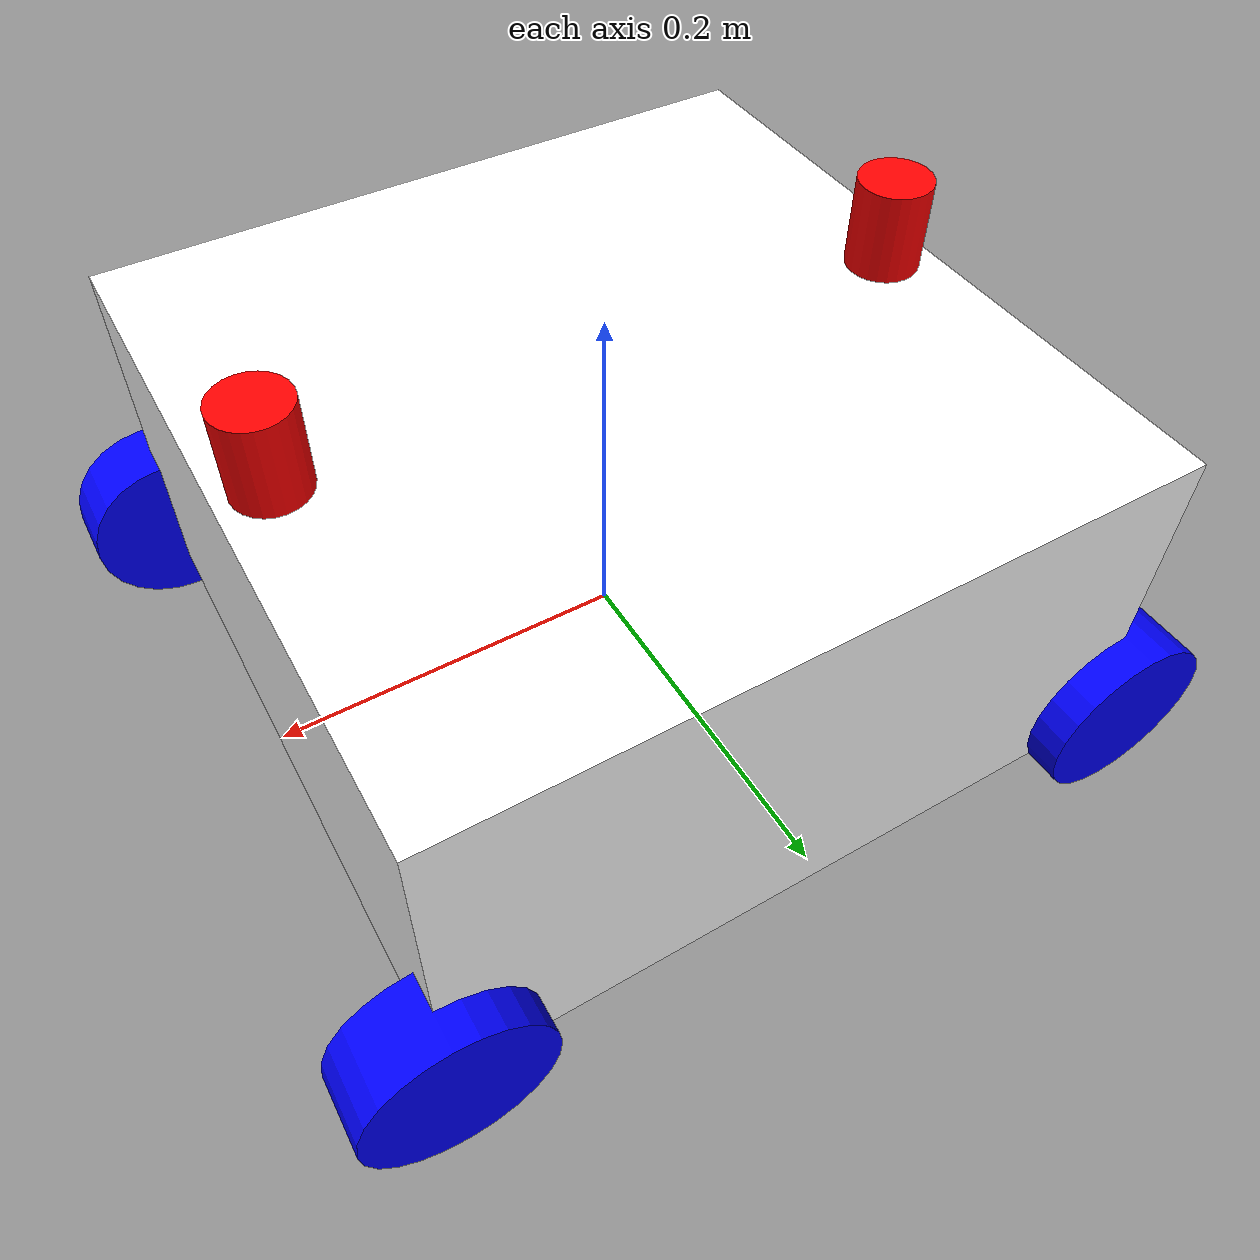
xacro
<?xml version="1.0"?>
<robot xmlns:xacro="http://www.ros.org/wiki/xacro" name="robot">

    <xacro:include filename="robot_core.xacro" />
    <xacro:include filename="lidar_front.xacro" />
    <xacro:include filename="lidar_rear.xacro" />
    <xacro:include filename="imu.xacro" />
</robot>

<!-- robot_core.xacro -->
<robot xmlns:xacro="http://www.ros.org/wiki/xacro">

<material name="white">
    <color rgba="1 1 1 1"/>
</material>

<material name="black">
    <color rgba="0 0 0 1"/>
</material>

<material name="red">
    <color rgba="1 0 0 1"/>
</material>

<material name="green">
    <color rgba="0 1 0 1"/>
</material>

<material name="blue">
    <color rgba="0 0 1 1"/>
</material>

<material name="yellow">
    <color rgba="1 1 0 1"/>
</material>

<!-- Base Link -->

<link name="base_link">

</link>

<!-- Base Footprint-->

<joint name="base_footprint_joint" type="fixed">
    <parent link="base_link"/>
    <child link="base_footprint"/>
    <origin xyz="0 0 0" rpy="0 0 0"/>
</joint>

<link name="base_footprint">
</link>

<!-- Chassis Link -->

<joint name="chassis_joint" type="fixed">
    <parent link="base_link"/>
    <child link="chassis"/>
    <origin xyz="0 0 0" rpy="0 0 0"/>
</joint>

<link name="chassis">
    <visual>
        <origin xyz="0 0 0.075" rpy="0 0 0"/>
        <geometry>
            <box size="0.4 0.4 0.2"/>
        </geometry>
        <material name="white"/>
    </visual>
</link>

<!-- Rear Left Wheel -->

<joint name="rear_left_wheel_joint" type="continuous">
    <parent link="base_link"/>
    <child link="rear_left_wheel"/>
    <origin xyz="-0.2 0.2 0" rpy="-${pi/2} 0 0"/>
    <axis xyz="0 0 1"/>
</joint>

<link name="rear_left_wheel">
    <visual>
        <geometry>
            <cylinder radius="0.05" length="0.04"/>
        </geometry>
        <material name="blue"/>
    </visual>
</link>

<!-- Rear Right Wheel -->

<joint name="rear_right_wheel_joint" type="continuous">
    <parent link="base_link"/>
    <child link="rear_right_wheel"/>
    <origin xyz="-0.2 -0.2 0" rpy="${pi/2} 0 0"/>
    <axis xyz="0 0 -1"/>
</joint>

<link name="rear_right_wheel">
    <visual>
        <geometry>
            <cylinder radius="0.05" length="0.04"/>
        </geometry>
        <material name="blue"/>
    </visual>
</link>

<!-- Front Left Wheel -->

<joint name="front_left_wheel_joint" type="continuous">
    <parent link="base_link"/>
    <child link="front_left_wheel"/>
    <origin xyz="0.2 0.2 0" rpy="-${pi/2} 0 0"/>
    <axis xyz="0 0 1"/>
</joint>

<link name="front_left_wheel">
    <visual>
        <geometry>
            <cylinder radius="0.05" length="0.04"/>
        </geometry>
        <material name="blue"/>
    </visual>
</link>

<!-- Front Right Wheel -->

<joint name="front_right_wheel_joint" type="continuous">
    <parent link="base_link"/>
    <child link="front_right_wheel"/>
    <origin xyz="0.2 -0.2 0" rpy="${pi/2} 0 0"/>
    <axis xyz="0 0 -1"/>
</joint>

<link name="front_right_wheel">
    <visual>
        <geometry>
            <cylinder radius="0.05" length="0.04"/>
        </geometry>
        <material name="blue"/>
    </visual>
</link>

</robot>

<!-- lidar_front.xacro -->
<robot xmlns:xacro="http://www.ros.org/wiki/xacro">

<joint name="laser_joint_front" type="fixed">
    <parent link="base_link"/>
    <child link="laser_frame_front"/>
    <origin xyz="0.172 0 0.2" rpy="0 0 ${180 * pi / 180}"/>
</joint>

<link name="laser_frame_front">
    <visual>
        <origin xyz="0 0 0" rpy="0 0 0"/>
        <geometry>
            <cylinder length="0.05" radius="0.02"/>
        </geometry>
        <material name="red"/>
    </visual>
</link>

</robot>

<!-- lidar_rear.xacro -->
<robot xmlns:xacro="http://www.ros.org/wiki/xacro">

<joint name="laser_joint_rear" type="fixed">
    <parent link="base_link"/>
    <child link="laser_frame_rear"/>
    <origin xyz="-0.172 0 0.2" rpy="0 0 ${0 * pi / 180}"/>
</joint>

<link name="laser_frame_rear">
    <visual>
        <origin xyz="0 0 0" rpy="0 0 0"/>
        <geometry>
            <cylinder length="0.05" radius="0.02"/>
        </geometry>
        <material name="red"/>
    </visual>
</link>

</robot>

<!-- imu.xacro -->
<robot xmlns:xacro="http://www.ros.org/wiki/xacro">

    <!-- IMU Link -->

    <joint name="imu_joint" type="fixed">
        <parent link="base_link"/>
        <child link="imu_link"/>
        <!-- Adjust xyz to match the physical placement of the BNO055 on your robot -->
        <origin xyz="0 0 0.1" rpy="0 0 0"/>
    </joint>

    <link name="imu_link">
        <visual>
            <geometry>
                <box size="0.02 0.02 0.005"/>
            </geometry>
            <material name="green"/>
        </visual>
    </link>

</robot>
